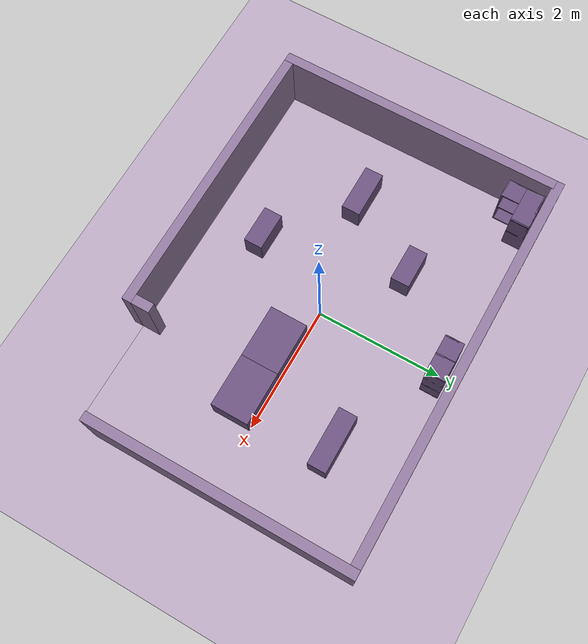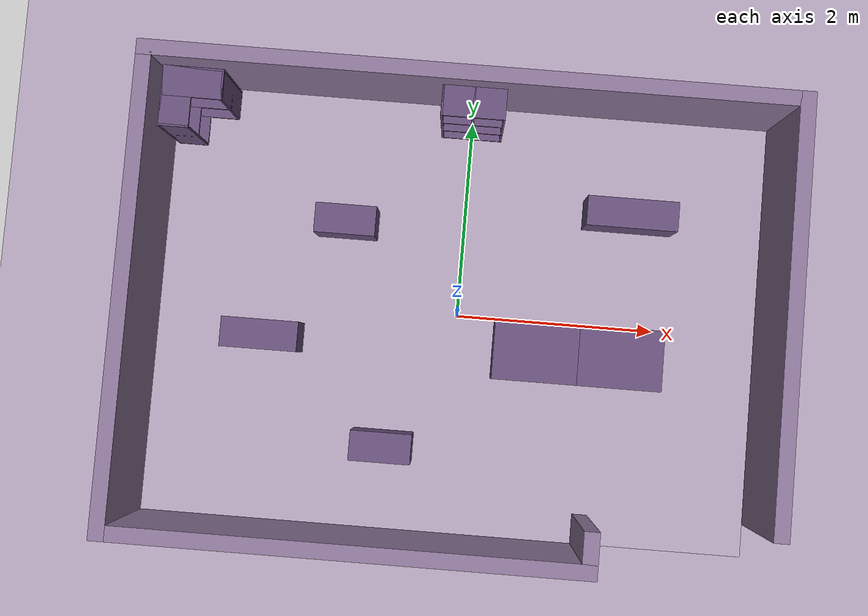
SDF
<sdf version="1.8">
 <world name="my_world">
  <plugin filename="gz-sim-physics-system" name="gz::sim::systems::Physics"/>
  <plugin filename="gz-sim-user-commands-system" name="gz::sim::systems::UserCommands"/>
  <plugin filename="gz-sim-scene-broadcaster-system" name="gz::sim::systems::SceneBroadcaster"/>
  <plugin filename="gz-sim-sensors-system" name="gz::sim::systems::Sensors">
   <render_engine>ogre2</render_engine>
  </plugin>
  <plugin filename="gz-sim-imu-system" name="gz::sim::systems::Imu"/>
  <plugin filename="gz-sim-contact-system" name="gz::sim::systems::Contact"/>
  <physics name="1ms" type="ignored">
   <max_step_size>0.001</max_step_size>
   <real_time_factor>1.0</real_time_factor>
  </physics>
  <scene><shadows>true</shadows></scene>
  <light name="sun" type="directional">
   <pose>0 0 10 0 0 0</pose>
   <diffuse>0.8 0.8 0.8 1</diffuse>
   <specular>0.1 0.1 0.1 1</specular>
   <attenuation>
    <range>1000</range>
    <constant>0.9</constant>
    <linear>0.01</linear>
    <quadratic>0.001</quadratic>
   </attenuation>
   <direction>-0.5 0.5 -1</direction>
  </light>
  <model name="ground_plane">
   <static>true</static>
   <link name="link">
    <collision name="collision">
     <geometry><plane><normal>0 0 1</normal><size>100 100</size></plane></geometry>
    </collision>
    <visual name="visual">
     <geometry><plane><normal>0 0 1</normal><size>100 100</size></plane></geometry>
     <material><ambient>0.702 0.639 0.729 1</ambient><diffuse>0.702 0.639 0.729 1</diffuse></material>
    </visual>
   </link>
  </model>
  <include><uri>model://Workshop</uri></include>
  <include><pose>-1.936710 -0.343286 0.013 0 0 -1.57</pose><uri>model://Box_15x30</uri></include>
  <include><name>Box_33x15_1</name><pose>1.636 -0.3 0.013 0 0 0</pose><uri>model://Box_33x15</uri></include>
  <include><name>Box_33x15_2</name><pose>0.8 -0.3 0.013 0 0 0</pose><uri>model://Box_33x15</uri></include>
  <include><pose>1.658951 1.141109 0.013 0 0 0</pose><uri>model://Box_36x15W</uri></include>
  <include><pose>0 1.986729 0.013002 0 0 0</pose><uri>model://6_Cube_StorageE</uri></include>
  <include><pose>-0.653226 -1.356719 0.013 0 0 0</pose><uri>model://Box_24x15M</uri></include>
  <include><pose>-1.184366 0.857670 0.013 0 0 0</pose><uri>model://Box_24x15W</uri></include>
  <include>
   <pose>-2.710050 1.858030 0.013 0 0 -1.574973</pose>
   <uri>model://Wall_Cabinet_Coin_24x30W</uri>
  </include>
 </world>
</sdf>

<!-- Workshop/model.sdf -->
<sdf version='1.6'>
  <model name='Workshop'>

    <link name='Wall_10'>
      <collision name='Wall_10_Collision'>
        <geometry>
          <box>
            <size>6.26 0.15 1</size>
          </box>
        </geometry>
        <pose frame=''>0 0 0.5 0 -0 0</pose>
      </collision>
      <visual name='Wall_10_Visual'>
        <pose frame=''>0 0 0.5 0 -0 0</pose>
        <geometry>
          <box>
            <size>6.26 0.15 1</size>
          </box>
        </geometry>
        <material>
          <ambient>0.553 0.463 0.604 1</ambient>
          <diffuse>0.553 0.463 0.604 1</diffuse>
          <specular>0.1 0.1 0.1 1</specular>
        </material>
      </visual>
      <pose frame=''>-0.0745 2.24856 0 0 0 0</pose>
    </link>
    <link name='Wall_11'>
      <collision name='Wall_11_Collision'>
        <geometry>
          <box>
            <size>4.199944 0.15 1</size>
          </box>
        </geometry>
        <pose frame=''>0 0 0.5 0 -0 0</pose>
      </collision>
      <visual name='Wall_11_Visual'>
        <pose frame=''>0 0 0.5 0 -0 0</pose>
        <geometry>
          <box>
            <size>4.199944 0.15 1</size>
          </box>
        </geometry>
        <material>
          <ambient>0.553 0.463 0.604 1</ambient>
          <diffuse>0.553 0.463 0.604 1</diffuse>
          <specular>0.1 0.1 0.1 1</specular>
        </material>
      </visual>
      <pose frame=''>3.12000 0.223500 0 0 0 -1.5708</pose>
    </link>
    <link name='Wall_13'>
      <collision name='Wall_13_Collision'>
        <geometry>
          <box>
            <size>4.557060 0.15 1</size>
          </box>
        </geometry>
        <pose frame=''>0 0 0.5 0 -0 0</pose>
      </collision>
      <visual name='Wall_13_Visual'>
        <pose frame=''>0 0 0.5 0 -0 0</pose>
        <geometry>
          <box>
            <size>4.557060 0.15 1</size>
          </box>
        </geometry>
        <material>
          <ambient>0.553 0.463 0.604 1</ambient>
          <diffuse>0.553 0.463 0.604 1</diffuse>
          <specular>0.1 0.1 0.1 1</specular>
        </material>
      </visual>
      <pose frame=''>-3.129500 -0.075000 0 0 0 -1.5708</pose>
    </link>
    <link name='Wall_15'>
      <collision name='Wall_15_Collision'>
        <geometry>
          <box>
            <size>4.521 0.15 1</size>
          </box>
        </geometry>
        <pose frame=''>0 0 0.5 0 -0 0</pose>
      </collision>
      <visual name='Wall_15_Visual'>
        <pose frame=''>0 0 0.5 0 -0 0</pose>
        <geometry>
          <box>
            <size>4.521 0.15 1</size>
          </box>
        </geometry>
        <material>
          <ambient>0.553 0.463 0.604 1</ambient>
          <diffuse>0.553 0.463 0.604 1</diffuse>
          <specular>0.1 0.1 0.1 1</specular>
        </material>
      </visual>
      <pose frame=''>-0.794000 -2.278500 0 0 -0 0</pose>
    </link>
    <link name='Wall_17'>
      <collision name='Wall_17_Collision'>
        <geometry>
          <box>
            <size>0.302 0.15 1</size>
          </box>
        </geometry>
        <pose frame=''>0 0 0.5 0 -0 0</pose>
      </collision>
      <visual name='Wall_17_Visual'>
        <pose frame=''>0 0 0.5 0 -0 0</pose>
        <geometry>
          <box>
            <size>0.302 0.15 1</size>
          </box>
        </geometry>
        <material>
          <ambient>0.553 0.463 0.604 1</ambient>
          <diffuse>0.553 0.463 0.604 1</diffuse>
          <specular>0.1 0.1 0.1 1</specular>
        </material>
      </visual>
      <pose frame=''>1.392000 -2.057440 0 0 -0 1.5708</pose>
    </link>
    <link name='Wall_19'>
      <collision name='Wall_19_Collision'>
        <geometry>
          <box>
            <size>6.099 4.38 0.013</size>
          </box>
        </geometry>
        <pose frame=''>0 0 0.0065 0 -0 0</pose>
	 <surface>
          <friction>
            <ode>
              <mu>1</mu>
              <mu2>1</mu2>
            </ode>
          </friction>
	<bounce/>
            <contact>
              <ode/>
            </contact>
        </surface>
 	<max_contacts>10</max_contacts>
      </collision>
      <visual name='Wall_19_Visual'>
        <pose frame=''>0 0 0.0065 0 -0 0</pose>
        <geometry>
          <box>
            <size>6.099 4.38 0.013</size>
          </box>
        </geometry>
           <material>
          <ambient>0.702 0.639 0.729 1</ambient>
          <diffuse>0.702 0.639 0.729 1</diffuse>
          <specular>0.05 0.05 0.05 1</specular>
        </material>
      </visual>
      <pose frame=''>-0.005116 -0.013556 0 0 -0 0</pose>
 <velocity_decay>
          <linear>0</linear>
          <angular>0</angular>
        </velocity_decay>
        <self_collide>0</self_collide>
        <kinematic>0</kinematic>
        <gravity>1</gravity>
    </link>
    <static>1</static>
  </model>
</sdf>

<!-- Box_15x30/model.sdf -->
<sdf version='1.6'>
  <model name='Box_15x30'>
    <link name='Wall'>
     <pose frame=''>0 0.0 0.1985 0 0 0</pose>
	<inertial>
	  <mass>5</mass>
	   <inertia>
	     <ixx>0.3089</ixx>
	     <iyy>0.1022</iyy>
	     <izz>0.2797</izz>
    	     <ixy>0</ixy>
	     <ixz>0</ixz>
	     <iyz>0</iyz>
	   </inertia>
	</inertial>
      <collision name='Wall_Collision'>
        <geometry>
          <box>
            <size>0.296 0.764 0.397</size>
          </box>
        </geometry>
      </collision>
      <visual name='Wall_Visual'>
        <geometry>
          <box>
            <size>0.296 0.764 0.397</size>
          </box>
        </geometry>
        <material>
          <ambient>0.408 0.314 0.482 1</ambient>
          <diffuse>0.408 0.314 0.482 1</diffuse>
          <specular>0.1 0.1 0.1 1</specular>
        </material>
      </visual>
     </link>

    <static>1</static>
  </model>
</sdf>

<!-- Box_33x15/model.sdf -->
<sdf version='1.6'>
  <model name='Box_33x15'>
    <link name='Wall'>
    <pose frame=''>0 0 0.1985 0 0 0</pose>
	<inertial>
	  <mass>5</mass>
	   <inertia>
	     <ixx>0.2157</ixx>
	     <iyy>0.3597</iyy>
	     <izz>0.4440</izz>
    	     <ixy>0</ixy>
	     <ixz>0</ixz>
	     <iyz>0</iyz>
	   </inertia>
	</inertial>
      <collision name='Wall_Collision'>
        <geometry>
          <box>
            <size>0.84 0.6 0.397 </size>
          </box>
        </geometry>
       </collision>
      <visual name='Wall_Visual'>
       <geometry>
          <box>
            <size>0.84 0.6 0.397 </size>
          </box>
        </geometry>
        <material>
          <ambient>0.408 0.314 0.482 1</ambient>
          <diffuse>0.408 0.314 0.482 1</diffuse>
          <specular>0.1 0.1 0.1 1</specular>
        </material>
      </visual>
     </link>

    <static>1</static>
  </model>
</sdf>

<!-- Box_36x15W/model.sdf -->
<sdf version='1.6'>
  <model name='Box_36x15W'>
     <link name='Wall'>
 	<pose frame=''>0 0 0.1985 0 0 0</pose>
	<inertial>
	  <mass>5</mass>
	   <inertia>
	     <ixx>0.1022</ixx>
	     <iyy>0.4107</iyy>
	     <izz>0.3815</izz>
    	     <ixy>0</ixy>
	     <ixz>0</ixz>
	     <iyz>0</iyz>
	   </inertia>
	</inertial>
      <collision name='Wall_Collision'>
        <geometry>
          <box>
            <size>0.91 0.296 0.397</size>
          </box>
        </geometry>
      </collision>
      <visual name='Wall_Visual'>
          <geometry>
          <box>
            <size>0.91 0.296 0.397</size>
          </box>
        </geometry>
        <material>
          <ambient>0.408 0.314 0.482 1</ambient>
          <diffuse>0.408 0.314 0.482 1</diffuse>
          <specular>0.1 0.1 0.1 1</specular>
        </material>
      </visual>
    </link>

    <static>1</static>
  </model>
</sdf>

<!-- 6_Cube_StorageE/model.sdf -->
<sdf version='1.6'>
  <model name='6_Cube_StorageE'>

    <link name='Wall_0'>
    <pose frame=''>0 0 0.01 0 -0 0</pose>
	<inertial>
	  <mass>1.6201</mass>
	   <inertia>
	     <ixx>0.0119</ixx>
	     <iyy>0.0631</iyy>
	     <izz>0.0513</izz>
    	     <ixy>0</ixy>
	     <ixz>0</ixz>
	     <iyz>0</iyz>
	   </inertia>
	</inertial>
      <collision name='Wall_0_Collision'>
        <geometry>
          <box>
            <size>0.616 0.296 0.02</size>
          </box>
        </geometry>
      </collision>
      <visual name='Wall_0_Visual'>
        <geometry>
          <box>
            <size>0.616 0.296 0.02</size>
          </box>
        </geometry>
        <material>
          <ambient>0.408 0.314 0.482 1</ambient>
          <diffuse>0.408 0.314 0.482 1</diffuse>
          <specular>0.1 0.1 0.1 1</specular>
        </material>
      </visual>
   </link>

     <joint type="fixed" name="0_2">
      <pose frame=''>-0.308 0 0 0 0 0</pose>
         <parent>Wall_2</parent>
  	 <child>Wall_0</child>
	 <axis>
	   <xyz>1 0 0</xyz>
	 </axis>
       </joint>

  <joint type="fixed" name="0_12">
      <pose frame=''>0 0 0 0 0 0</pose>
         <parent>Wall_12</parent>
  	 <child>Wall_0</child>
	 <axis>
	   <xyz>0 0 1</xyz>
	 </axis>
       </joint>

  <joint type="fixed" name="0_4">
      <pose frame=''>0.308 0 0 0 0 0</pose>
         <parent>Wall_4</parent>
  	 <child>Wall_0</child>
	 <axis>
	   <xyz>1 0 0</xyz>
	 </axis>
       </joint>

    <link name='Wall_10'>
      <pose frame=''>0 0 0.610 0 0 0</pose>
	<inertial>
	  <mass>1.6201</mass>
	   <inertia>
	     <ixx>0.0119</ixx>
	     <iyy>0.0631</iyy>
	     <izz>0.0513</izz>
    	     <ixy>0</ixy>
	     <ixz>0</ixz>
	     <iyz>0</iyz>
	   </inertia>
	</inertial>
      <collision name='Wall_10_Collision'>
        <geometry>
          <box>
            <size>0.616 0.296 0.02 </size>
          </box>
        </geometry>
      </collision>
      <visual name='Wall_10_Visual'>
          <geometry>
          <box>
            <size>0.616 0.296 0.02</size>
          </box>
        </geometry>
        <material>
          <ambient>0.408 0.314 0.482 1</ambient>
          <diffuse>0.408 0.314 0.482 1</diffuse>
          <specular>0.1 0.1 0.1 1</specular>
        </material>
      </visual>
    </link>

     <joint type="fixed" name="10_2">
      <pose frame=''>-0.308 0 0 0 0 0</pose>
         <parent>Wall_2</parent>
  	 <child>Wall_10</child>
	 <axis>
	   <xyz>1 0 0</xyz>
	 </axis>
       </joint>

  <joint type="fixed" name="10_12">
      <pose frame=''>0 0 0 0 0 0</pose>
         <parent>Wall_12</parent>
  	 <child>Wall_10</child>
	 <axis>
	   <xyz>0 0 1</xyz>
	 </axis>
       </joint>

  <joint type="fixed" name="10_4">
      <pose frame=''>0.308 0 0 0 0 0</pose>
         <parent>Wall_4</parent>
  	 <child>Wall_10</child>
	 <axis>
	   <xyz>1 0 0</xyz>
	 </axis>
       </joint>

    <link name='Wall_12'>
  <pose frame=''>0 0 0.4575 0 0 0</pose>
	<inertial>
	  <mass>2.4065</mass>
	   <inertia>
	     <ixx>0.0177</ixx>
	     <iyy>0.1855</iyy>
	     <izz>0.1680</izz>
    	     <ixy>0</ixy>
	     <ixz>0</ixz>
	     <iyz>0</iyz>
	   </inertia>
	</inertial>
      <collision name='Wall_12_Collision'>
        <geometry>
          <box>
            <size>0.02 0.296 0.915</size>
          </box>
        </geometry>
      </collision>
      <visual name='Wall_12_Visual'>
         <geometry>
          <box>
            <size>0.02 0.296 0.915</size>
          </box>
        </geometry>
        <material>
          <ambient>0.408 0.314 0.482 1</ambient>
          <diffuse>0.408 0.314 0.482 1</diffuse>
          <specular>0.1 0.1 0.1 1</specular>
        </material>
      </visual>
    </link>

    <link name='Wall_2'>
      <pose frame=''>-0.298 0 0.4575 0 0 0</pose>
	<inertial>
	  <mass>2.4065</mass>
	   <inertia>
	     <ixx>0.0177</ixx>
	     <iyy>0.1855</iyy>
	     <izz>0.1680</izz>
    	     <ixy>0</ixy>
	     <ixz>0</ixz>
	     <iyz>0</iyz>
	   </inertia>
	</inertial>
      <collision name='Wall_2_Collision'>
        <geometry>
          <box>
            <size>0.02 0.296 0.915</size>
          </box>
        </geometry>
      </collision>
      <visual name='Wall_2_Visual'>
        <geometry>
          <box>
            <size>0.02 0.296 0.915</size>
          </box>
        </geometry>
        <material>
          <ambient>0.408 0.314 0.482 1</ambient>
          <diffuse>0.408 0.314 0.482 1</diffuse>
          <specular>0.1 0.1 0.1 1</specular>
        </material>
      </visual>
    </link>

    <link name='Wall_4'>
      <pose frame=''>0.298 0 0.4575 0 0 0</pose>
	<inertial>
	  <mass>2.4065</mass>
	   <inertia>
	     <ixx>0.0177</ixx>
	     <iyy>0.1855</iyy>
	     <izz>0.1680</izz>
    	     <ixy>0</ixy>
	     <ixz>0</ixz>
	     <iyz>0</iyz>
	   </inertia>
	</inertial>
      <collision name='Wall_4_Collision'>
        <geometry>
          <box>
            <size>0.02 0.296 0.915</size>
          </box>
        </geometry>
      </collision>
      <visual name='Wall_4_Visual'>
        <geometry>
          <box>
            <size>0.02 0.296 0.915</size>
          </box>
        </geometry>
        <material>
          <ambient>0.408 0.314 0.482 1</ambient>
          <diffuse>0.408 0.314 0.482 1</diffuse>
          <specular>0.1 0.1 0.1 1</specular>
        </material>
      </visual>
    </link>

    <link name='Wall_6'>
     <pose frame=''>0 0 0.905 0 0 0</pose>
	<inertial>
	  <mass>1.6201</mass>
	   <inertia>
	     <ixx>0.0119</ixx>
	     <iyy>0.0631</iyy>
	     <izz>0.0513</izz>
    	     <ixy>0</ixy>
	     <ixz>0</ixz>
	     <iyz>0</iyz>
	   </inertia>
	</inertial>
      <collision name='Wall_6_Collision'>
        <geometry>
          <box>
            <size>0.616 0.296 0.02</size>
          </box>
        </geometry>
       </collision>
      <visual name='Wall_6_Visual'>
        <geometry>
          <box>
            <size>0.616 0.296 0.02</size>
          </box>
        </geometry>
        <material>
          <ambient>0.408 0.314 0.482 1</ambient>
          <diffuse>0.408 0.314 0.482 1</diffuse>
          <specular>0.1 0.1 0.1 1</specular>
        </material>
      </visual>
     </link>

     <joint type="fixed" name="6_2">
      <pose frame=''>-0.308 0 0 0 0 0</pose>
         <parent>Wall_2</parent>
  	 <child>Wall_6</child>
	 <axis>
	   <xyz>2 0 0</xyz>
	 </axis>
       </joint>

  <joint type="fixed" name="6_12">
      <pose frame=''>0 0 0 0 0 0</pose>
         <parent>Wall_12</parent>
  	 <child>Wall_6</child>
	 <axis>
	   <xyz>0 0 1</xyz>
	 </axis>
       </joint>

  <joint type="fixed" name="6_4">
      <pose frame=''>0.308 0 0 0 0 0</pose>
         <parent>Wall_4</parent>
  	 <child>Wall_6</child>
	 <axis>
	   <xyz>1 0 0</xyz>
	 </axis>
       </joint>

    <link name='Wall_8'>
    <pose frame=''>0 0 0.305 0 0 0</pose>
	<inertial>
	  <mass>1.6201</mass>
	   <inertia>
	     <ixx>0.0119</ixx>
	     <iyy>0.0631</iyy>
	     <izz>0.0513</izz>
    	     <ixy>0</ixy>
	     <ixz>0</ixz>
	     <iyz>0</iyz>
	   </inertia>
	</inertial>
      <collision name='Wall_8_Collision'>
        <geometry>
          <box>
            <size>0.616 0.296 0.02</size>
          </box>
        </geometry>
       </collision>
      <visual name='Wall_8_Visual'>
        <geometry>
          <box>
            <size>0.616 0.296 0.02</size>
          </box>
        </geometry>
        <material>
          <ambient>0.408 0.314 0.482 1</ambient>
          <diffuse>0.408 0.314 0.482 1</diffuse>
          <specular>0.1 0.1 0.1 1</specular>
        </material>
      </visual>
      </link>

     <joint type="fixed" name="8_2">
      <pose frame=''>-0.308 0 0 0 0 0</pose>
         <parent>Wall_2</parent>
  	 <child>Wall_8</child>
	 <axis>
	   <xyz>1 0 0</xyz>
	 </axis>
       </joint>

  <joint type="fixed" name="8_12">
      <pose frame=''>0 0 0 0 0 0</pose>
         <parent>Wall_12</parent>
  	 <child>Wall_8</child>
	 <axis>
	   <xyz>0 0 1</xyz>
	 </axis>
       </joint>

  <joint type="fixed" name="8_4">
      <pose frame=''>0.308 0 0 0 0 0</pose>
         <parent>Wall_4</parent>
  	 <child>Wall_8</child>
	 <axis>
	   <xyz>1 0 0</xyz>
	 </axis>
       </joint>

    <static>1</static>
  </model>
</sdf>

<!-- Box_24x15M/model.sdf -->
<sdf version='1.6'>
  <model name='Box_24x15M'>
    <link name='Wall'>
	<pose frame=''>0 0 0.1985 0 -0 0</pose>
	<inertial>
	  <mass>5</mass>
	   <inertia>
	     <ixx>0.1022</ixx>
	     <iyy>0.2197</iyy>
	     <izz>0.1905</izz>
    	     <ixy>0</ixy>
	     <ixz>0</ixz>
	     <iyz>0</iyz>
	   </inertia>
	</inertial>
      <collision name='Wall_Collision'>
        <geometry>
          <box>
            <size>0.608 0.296 0.397 </size>
          </box>
        </geometry>

      </collision>
      <visual name='Wall_Visual'>

        <geometry>
          <box>
            <size>0.608 0.296 0.397</size>
          </box>
        </geometry>
        <material>
          <ambient>0.408 0.314 0.482 1</ambient>
          <diffuse>0.408 0.314 0.482 1</diffuse>
          <specular>0.1 0.1 0.1 1</specular>
        </material>
      </visual>
    </link>

    <static>1</static>
  </model>
</sdf>

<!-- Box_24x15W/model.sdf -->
<sdf version='1.6'>
  <model name='Box_24x15W'>
    <link name='Wall'>
	<pose frame=''>0 0 0.1985 0 0 0</pose>
	<inertial>
	  <mass>5</mass>
	   <inertia>
	     <ixx>0.1022</ixx>
	     <iyy>0.2197</iyy>
	     <izz>0.1905</izz>
    	     <ixy>0</ixy>
	     <ixz>0</ixz>
	     <iyz>0</iyz>
	   </inertia>
	</inertial>
      <collision name='Wall_Collision'>
        <geometry>
          <box>
            <size>0.608 0.296 0.397 </size>
          </box>
        </geometry>

      </collision>
      <visual name='Wall_Visual'>

        <geometry>
          <box>
            <size>0.608 0.296 0.397</size>
          </box>
        </geometry>
        <material>
          <ambient>0.408 0.314 0.482 1</ambient>
          <diffuse>0.408 0.314 0.482 1</diffuse>
          <specular>0.1 0.1 0.1 1</specular>
        </material>
      </visual>
     </link>

    <static>1</static>
  </model>
</sdf>

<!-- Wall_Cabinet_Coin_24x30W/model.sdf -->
<sdf version='1.6'>
   <model name='Wall_Cabinet_Coin_24x30W'>
    <link name='Wall_10'>
     <pose frame=''>0.286 -0.148 0.384 0 0 0</pose>
	<inertial>
	  <mass>2.1259</mass>
	   <inertia>
	     <ixx>0.0158</ixx>
	     <iyy>0.1202</iyy>
	     <izz>0.1046</izz>
    	     <ixy>0</ixy>
	     <ixz>0</ixz>
	     <iyz>0</iyz>
	   </inertia>
	</inertial>
      <collision name='Wall_10_Collision'>
        <geometry>
          <box>
            <size> 0.02 0.296 0.768</size>
          </box>
        </geometry>
      </collision>
      <visual name='Wall_10_Visual'>
        <geometry>
          <box>
            <size>0.02 0.296 0.768</size>
          </box>
        </geometry>
        <material>
          <ambient>0.408 0.314 0.482 1</ambient>
          <diffuse>0.408 0.314 0.482 1</diffuse>
          <specular>0.1 0.1 0.1 1</specular>
        </material>
      </visual>
    </link>

     <joint type="fixed" name="10_16">
      <pose frame=''> 0 0 -0.374 0 0 0</pose>
         <parent>Wall_16</parent>
  	 <child>Wall_10</child>
	 <axis>
	   <xyz>1 0 0</xyz>
	 </axis>
       </joint>
   <joint type="fixed" name="10_14">
          <pose frame=''>0 0 0 0 0 0</pose>
         <parent>Wall_14</parent>
  	 <child>Wall_10</child>
	 <axis>
	   <xyz>1 0 0</xyz>
	 </axis>
       </joint>

   <joint type="fixed" name="10_12">
      <pose frame=''>0 0 0.374 0 0 0</pose>
         <parent>Wall_12</parent>
  	 <child>Wall_10</child>
	 <axis>
	   <xyz>1 0 0</xyz>
	 </axis>
       </joint>

   <joint type="fixed" name="10_29">
      <pose frame=''>0 -0.148 0 0 0 0</pose>
         <parent>Wall_29</parent>
  	 <child>Wall_10</child>
	 <axis>
	   <xyz>1 0 0</xyz>
	 </axis>
       </joint>

    <link name='Wall_12'>
   <pose frame=''>0.148 -0.148 0.758 0 0 0</pose>
	<inertial>
	  <mass>0.8802</mass>
	   <inertia>
	     <ixx>0.0065</ixx>
	     <iyy>0.0139</iyy>
	     <izz>0.0074</izz>
    	     <ixy>0</ixy>
	     <ixz>0</ixz>
	     <iyz>0</iyz>
	   </inertia>
	</inertial>
      <collision name='Wall_12_Collision'>
        <geometry>
          <box>
            <size>0.296 0.296 0.02</size>
          </box>
        </geometry>
      </collision>
      <visual name='Wall_12_Visual'>
        <geometry>
          <box>
            <size>0.296 0.296 0.02</size>
          </box>
        </geometry>
        <material>
          <ambient>0.408 0.314 0.482 1</ambient>
          <diffuse>0.408 0.314 0.482 1</diffuse>
          <specular>0.1 0.1 0.1 1</specular>
        </material>
      </visual>
     </link>

   <joint type="fixed" name="12_29">
      <pose frame=''>0 -0.148 0 0 0 0</pose>
         <parent>Wall_29</parent>
  	 <child>Wall_12</child>
	 <axis>
	   <xyz>0 0 1</xyz>
	 </axis>
       </joint>

    <link name='Wall_14'>
      <pose frame=''>0.148 -0.148 0.384 0 0 0</pose>
	<inertial>
	  <mass>0.8802</mass>
	   <inertia>
	     <ixx>0.0065</ixx>
	     <iyy>0.0139</iyy>
	     <izz>0.0074</izz>
    	     <ixy>0</ixy>
	     <ixz>0</ixz>
	     <iyz>0</iyz>
	   </inertia>
	</inertial>
      <collision name='Wall_14_Collision'>
        <geometry>
          <box>
            <size>0.296 0.296 0.02</size>
          </box>
        </geometry>
      </collision>
      <visual name='Wall_14_Visual'>
        <geometry>
          <box>
            <size>0.296 0.296 0.02</size>
          </box>
        </geometry>
        <material>
          <ambient>0.408 0.314 0.482 1</ambient>
          <diffuse>0.408 0.314 0.482 1</diffuse>
          <specular>0.1 0.1 0.1 1</specular>
        </material>
      </visual>
    </link>

   <joint type="fixed" name="14_29">
      <pose frame=''>0 -0.148 0 0 0 0</pose>
         <parent>Wall_29</parent>
  	 <child>Wall_14</child>
	 <axis>
	   <xyz>0 1 0</xyz>
	 </axis>
       </joint>

    <link name='Wall_16'>
      <pose frame=''>0.148 -0.148 0.01 0 0 0</pose>
	<inertial>
	  <mass>0.8802</mass>
	   <inertia>
	     <ixx>0.0065</ixx>
	     <iyy>0.0139</iyy>
	     <izz>0.0074</izz>
    	     <ixy>0</ixy>
	     <ixz>0</ixz>
	     <iyz>0</iyz>
	   </inertia>
	</inertial>
      <collision name='Wall_16_Collision'>
        <geometry>
          <box>
            <size>0.296 0.296 0.02 </size>
          </box>
        </geometry>
       </collision>
      <visual name='Wall_16_Visual'>
         <geometry>
          <box>
            <size>0.296 0.296 0.02</size>
          </box>
        </geometry>
        <material>
          <ambient>0.408 0.314 0.482 1</ambient>
          <diffuse>0.408 0.314 0.482 1</diffuse>
          <specular>0.1 0.1 0.1 1</specular>
        </material>
      </visual>
    </link>

   <joint type="fixed" name="16_29">
      <pose frame=''>0  -0.148 0 0 0 0</pose>
         <parent>Wall_29</parent>
  	 <child>Wall_16</child>
	 <axis>
	   <xyz>0 1 0</xyz>
	 </axis>
       </joint>

    <link name='Wall_18'>
      <pose frame=''>-0.148 0 0.01 0 0 0</pose>
	<inertial>
	  <mass>1.6525</mass>
	   <inertia>
	     <ixx>0.0491</ixx>
	     <iyy>0.0613</iyy>
	     <izz>0.0123</izz>
    	     <ixy>0</ixy>
	     <ixz>0</ixz>
	     <iyz>0</iyz>
	   </inertia>
	</inertial>
      <collision name='Wall_18_Collision'>
        <geometry>
          <box>
            <size>0.296 0.592 0.02</size>
          </box>
        </geometry>
        </collision>
      <visual name='Wall_18_Visual'>
        <geometry>
          <box>
            <size>0.296 0.592 0.02</size>
          </box>
        </geometry>
        <material>
          <ambient>0.408 0.314 0.482 1</ambient>
          <diffuse>0.408 0.314 0.482 1</diffuse>
          <specular>0.1 0.1 0.1 1</specular>
        </material>
      </visual>
    </link>

  <joint type="fixed" name="18_16">
      <pose frame=''> 0.148 -0.148 0 0 0 0</pose>
         <parent>Wall_16</parent>
  	 <child>Wall_18</child>
	 <axis>
	   <xyz>1 0 0</xyz>
	 </axis>
       </joint>

   <joint type="fixed" name="18_29">
          <pose frame=''>0 -0.296 0 0 0 0</pose>
         <parent>Wall_29</parent>
  	 <child>Wall_18</child>
	 <axis>
	   <xyz>0 1 0</xyz>
	 </axis>
       </joint>

   <joint type="fixed" name="18_27">
      <pose frame=''>-0.148 0 0 0 0 0</pose>
         <parent>Wall_27</parent>
  	 <child>Wall_18</child>
	 <axis>
	   <xyz>1 0 0</xyz>
	 </axis>
       </joint>

   <joint type="fixed" name="18_30">
      <pose frame=''>0 0.296 0 0 0 0</pose>
         <parent>Wall_30</parent>
  	 <child>Wall_18</child>
	 <axis>
	   <xyz>0 1 0</xyz>
	 </axis>
       </joint>

    <link name='Wall_20'>
      <pose frame=''>-0.148 0 0.384 0 0 0</pose>
	<inertial>
	  <mass>1.6525</mass>
	   <inertia>
	     <ixx>0.0491</ixx>
	     <iyy>0.0613</iyy>
	     <izz>0.0123</izz>
    	     <ixy>0</ixy>
	     <ixz>0</ixz>
	     <iyz>0</iyz>
	   </inertia>
	</inertial>
      <collision name='Wall_20_Collision'>
        <geometry>
          <box>
            <size>0.296 0.592 0.02</size>
          </box>
        </geometry>
      </collision>
      <visual name='Wall_20_Visual'>
        <geometry>
          <box>
            <size>0.296 0.592 0.02</size>
          </box>
        </geometry>
        <material>
          <ambient>0.408 0.314 0.482 1</ambient>
          <diffuse>0.408 0.314 0.482 1</diffuse>
          <specular>0.1 0.1 0.1 1</specular>
        </material>
      </visual>
    </link>

<joint type="fixed" name="20_14">
      <pose frame=''> 0.148 -0.148 0 0 0 0</pose>
         <parent>Wall_14</parent>
  	 <child>Wall_20</child>
	 <axis>
	   <xyz>1 0 0</xyz>
	 </axis>
       </joint>

   <joint type="fixed" name="20_29">
          <pose frame=''>0  -0.296 0 0 0 0</pose>
         <parent>Wall_29</parent>
  	 <child>Wall_20</child>
	 <axis>
	   <xyz>0 1 0</xyz>
	 </axis>
       </joint>

   <joint type="fixed" name="20_27">
      <pose frame=''>-0.148 0 0 0 0 0</pose>
         <parent>Wall_27</parent>
  	 <child>Wall_20</child>
	 <axis>
	   <xyz>1 0 0</xyz>
	 </axis>
       </joint>

   <joint type="fixed" name="20_30">
      <pose frame=''>0 0.296 0 0 0 0</pose>
         <parent>Wall_30</parent>
  	 <child>Wall_20</child>
	 <axis>
	   <xyz>0 1 0</xyz>
	 </axis>
       </joint>

    <link name='Wall_22'>
      <pose frame=''>-0.148 0 0.758 0 0 0</pose>
	<inertial>
	  <mass>1.6525</mass>
	   <inertia>
	     <ixx>0.0491</ixx>
	     <iyy>0.0613</iyy>
	     <izz>0.0123</izz>
    	     <ixy>0</ixy>
	     <ixz>0</ixz>
	     <iyz>0</iyz>
	   </inertia>
	</inertial>
      <collision name='Wall_22_Collision'>
        <geometry>
          <box>
            <size>0.296 0.592 0.02</size>
          </box>
        </geometry>
      </collision>
      <visual name='Wall_22_Visual'>
        <geometry>
          <box>
            <size>0.296 0.592 0.02</size>
          </box>
        </geometry>
        <material>
          <ambient>0.408 0.314 0.482 1</ambient>
          <diffuse>0.408 0.314 0.482 1</diffuse>
          <specular>0.1 0.1 0.1 1</specular>
        </material>
      </visual>
    </link>

<joint type="fixed" name="22_12">
      <pose frame=''> 0.148 -0.148 0 0 0 0</pose>
         <parent>Wall_12</parent>
  	 <child>Wall_22</child>
	 <axis>
	   <xyz>1 0 0</xyz>
	 </axis>
       </joint>

   <joint type="fixed" name="22_29">
          <pose frame=''>0 -0.296 0 0 0 0</pose>
         <parent>Wall_29</parent>
  	 <child>Wall_22</child>
	 <axis>
	   <xyz>0 1 0</xyz>
	 </axis>
       </joint>

   <joint type="fixed" name="22_27">
      <pose frame=''>-0.148 0 0 0 0 0</pose>
         <parent>Wall_27</parent>
  	 <child>Wall_22</child>
	 <axis>
	   <xyz>1 0 0</xyz>
	 </axis>
       </joint>

   <joint type="fixed" name="22_30">
      <pose frame=''>0 0.296 0 0 0 0</pose>
         <parent>Wall_30</parent>
  	 <child>Wall_22</child>
	 <axis>
	   <xyz>0 1 0</xyz>
	 </axis>
       </joint>

    <link name='Wall_27'>
      <pose frame=''>-0.286 0 0.384 0 0 0</pose>
	<inertial>
	  <mass>4.2589</mass>
	   <inertia>
	     <ixx>0.1266</ixx>
	     <iyy>0.3358</iyy>
	     <izz>0.2095</izz>
    	     <ixy>0</ixy>
	     <ixz>0</ixz>
	     <iyz>0</iyz>
	   </inertia>
	</inertial>
      <collision name='Wall_27_Collision'>
        <geometry>
          <box>
            <size>0.02 0.592 0.768</size>
          </box>
        </geometry>
      </collision>
      <visual name='Wall_27_Visual'>
        <geometry>
          <box>
            <size>0.02 0.592 0.768</size>
          </box>
        </geometry>
        <material>
          <ambient>0.408 0.314 0.482 1</ambient>
          <diffuse>0.408 0.314 0.482 1</diffuse>
          <specular>0.1 0.1 0.1 1</specular>
        </material>
      </visual>
    </link>

   <joint type="fixed" name="27_30">
      <pose frame=''>0 0.296 0 0 0 0</pose>
         <parent>Wall_30</parent>
  	 <child>Wall_27</child>
	 <axis>
	   <xyz>0 1 0</xyz>
	 </axis>
       </joint>

    <link name='Wall_29'>
     <pose frame=''>0 -0.286 0.384 0 0 0</pose>
	<inertial>
	  <mass>4.3176</mass>
	   <inertia>
	     <ixx>0.1340</ixx>
	     <iyy>0.2091</iyy>
	     <izz>0.3428</izz>
    	     <ixy>0</ixy>
	     <ixz>0</ixz>
	     <iyz>0</iyz>
	   </inertia>
	</inertial>
      <collision name='Wall_29_Collision'>
        <geometry>
          <box>
            <size> 0.592 0.02 0.768</size>
          </box>
        </geometry>
       </collision>
      <visual name='Wall_29_Visual'>
         <geometry>
          <box>
            <size>0.592 0.02 0.768</size>
          </box>
        </geometry>
        <material>
          <ambient>0.408 0.314 0.482 1</ambient>
          <diffuse>0.408 0.314 0.482 1</diffuse>
          <specular>0.1 0.1 0.1 1</specular>
        </material>
      </visual>
     </link>

 <link name='Wall_30'>
      <pose frame=''>-0.148 0.286 0.384 0 0 0</pose>
	<inertial>
	  <mass>2.1093</mass>
	   <inertia>
	     <ixx>0.1021</ixx>
	     <iyy>0.0157</iyy>
	     <izz>0.1177</izz>
    	     <ixy>0</ixy>
	     <ixz>0</ixz>
	     <iyz>0</iyz>
	   </inertia>
	</inertial>
      <collision name='Wall_30_Collision'>
        <geometry>
          <box>
            <size>0.296  0.02 0.768</size>
          </box>
        </geometry>
       </collision>
      <visual name='Wall_30_Visual'>
        <geometry>
          <box>
            <size>0.296  0.02 0.768</size>
          </box>
        </geometry>
        <material>
          <ambient>0.408 0.314 0.482 1</ambient>
          <diffuse>0.408 0.314 0.482 1</diffuse>
          <specular>0.1 0.1 0.1 1</specular>
        </material>
      </visual>
    </link>

    <static>1</static>
  </model>
</sdf>
